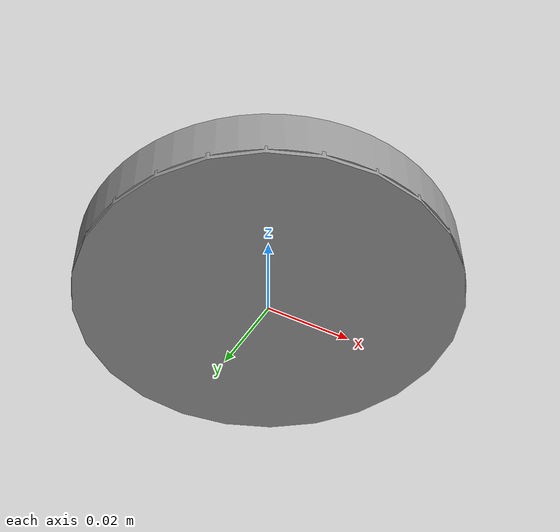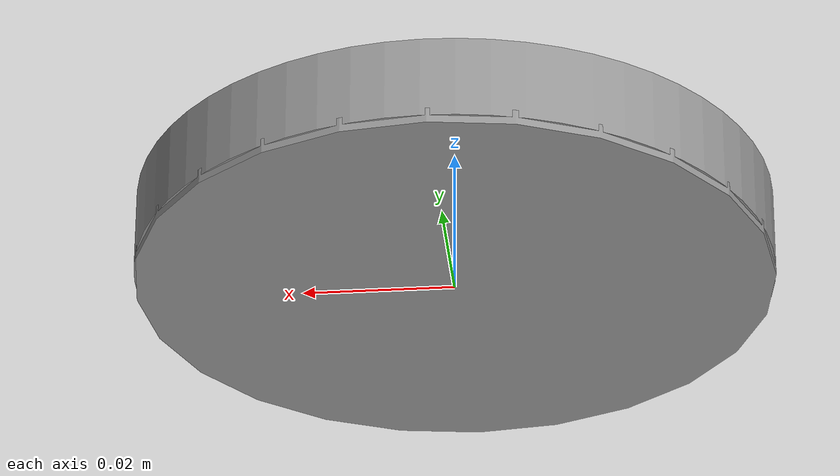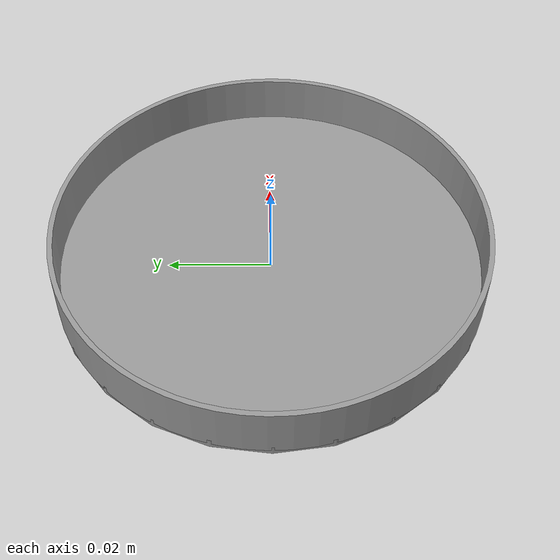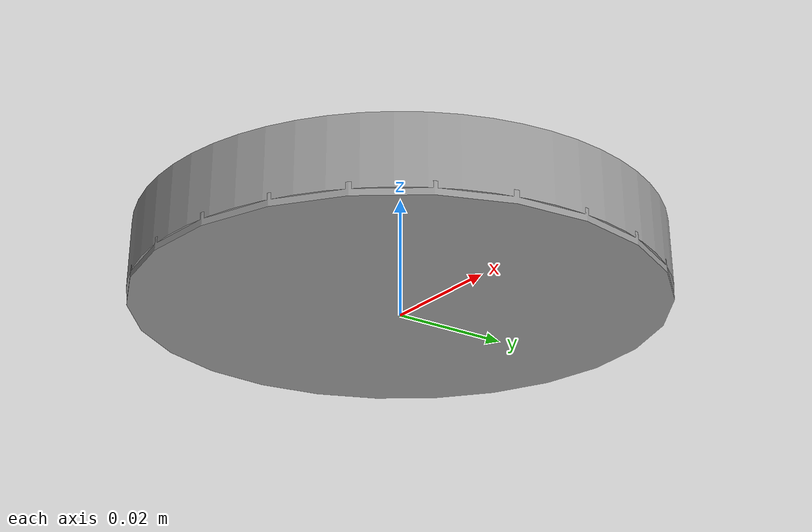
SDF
<?xml version="1.0" ?>

<sdf version="1.5">
  <model name="round_tin_top">
    <link name="link">
      <inertial>
        <pose>0 0 0.00575 0 0 0</pose>
        <mass>0.0142</mass>
        <inertia>
          <ixx>1.26808958333333e-05</ixx>
          <ixy>0</ixy>
          <ixz>0</ixz>
          <iyy>1.26808958333333e-05</iyy>
          <iyz>0</iyz>
          <izz>2.50488e-05</izz>
        </inertia>
      </inertial>

      <collision name="collision_cylinder">
        <pose>0 0 0.001  0 0 0</pose>
        <geometry>
          <cylinder>
            <radius>0.042</radius>
            <length>0.002</length>
          </cylinder>
        </geometry>
        <surface>
          <contact>
            <!-- tin (wikipedia) -->
            <poissons_ratio>0.36</poissons_ratio>
            <elastic_modulus>5.0e+10</elastic_modulus>
            <ode>
              <kp>100000</kp>
              <kd>100</kd>
              <max_vel>100.0</max_vel>
              <min_depth>0.001</min_depth>
            </ode>
          </contact>
          <friction>
            <torsional>
              <coefficient>1.0</coefficient>
              <use_patch_radius>0</use_patch_radius>
              <surface_radius>0.01</surface_radius>
            </torsional>
          </friction>
        </surface>
      </collision>

      <visual name="visual_cylinder">
        <pose>0 0 0.001  0 0 0</pose>
        <geometry>
          <cylinder>
            <radius>0.042</radius>
            <length>0.002</length>
          </cylinder>
        </geometry>
        <material>
          <script>
            <uri>file://media/materials/scripts/gazebo.material</uri>
            <name>Gazebo/Grey</name>
          </script>
        </material>
      </visual>

      <collision name="collision">
        <pose>0 0 0.001  0 0 0</pose>
        <geometry>
          <mesh>
            <uri>model://round_tin_top/meshes/round_tin_top.dae</uri>
          </mesh>
        </geometry>
        <surface>
          <contact>
            <ode>
              <max_vel>0.1</max_vel>
              <min_depth>0.001</min_depth>
            </ode>
          </contact>
        </surface>
      </collision>

      <visual name="visual">
        <pose>0 0 0.001  0 0 0</pose>
        <geometry>
          <mesh>
            <uri>model://round_tin_top/meshes/round_tin_top.dae</uri>
          </mesh>
        </geometry>
        <material>
          <script>
            <uri>file://media/materials/scripts/gazebo.material</uri>
            <name>Gazebo/Grey</name>
          </script>
        </material>
      </visual>

    </link>
  </model>
</sdf>
